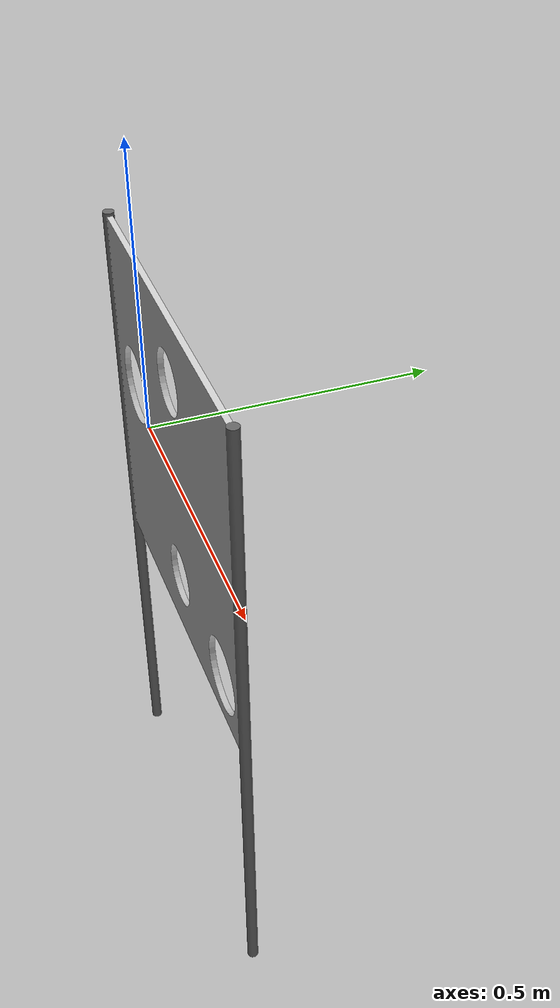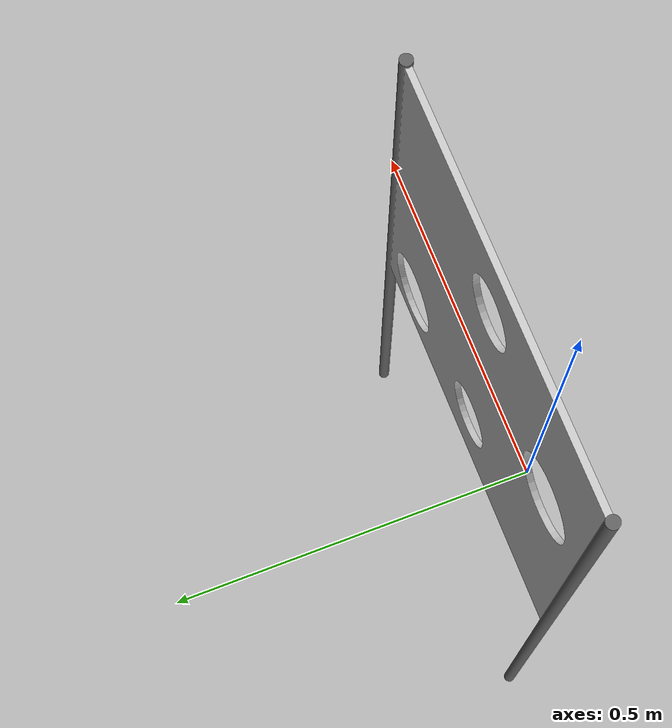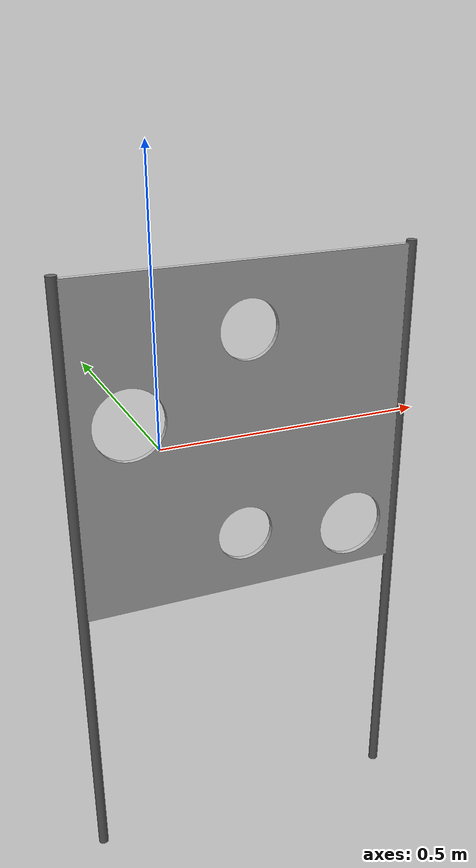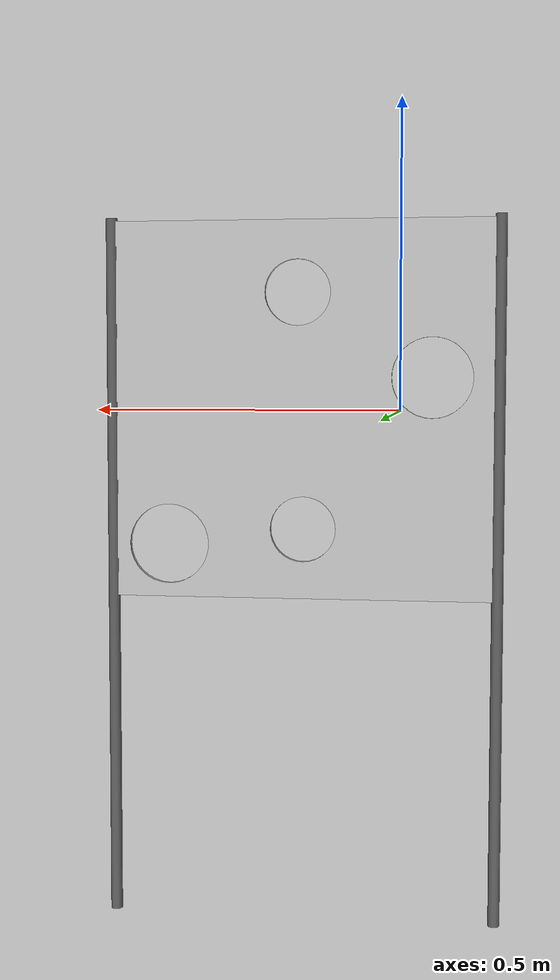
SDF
<?xml version="1.0"?>
<sdf version='1.7'>
  <model name='competition_tagging'>
    <static>true</static>
    <link name='base_link'>
      <pose>0 0 0 0 -0 0</pose>
      <inertial>
        <pose>0 0 0 0 -0 0</pose>
        <mass>1</mass>
        <inertia>
          <ixx>0.166667</ixx>
          <ixy>0</ixy>
          <ixz>0</ixz>
          <iyy>0.166667</iyy>
          <iyz>0</iyz>
          <izz>0.166667</izz>
        </inertia>
      </inertial>
      <collision name='base_link_collision'>
        <pose>0 0 0 0 -0 0</pose>
        <geometry>
          <mesh>
             <uri>model://competition_tagging/meshes/taggingtarget.dae</uri>
          </mesh>
        </geometry>
      </collision>
      <visual name='base_link_visual'>
        <pose>0 0 0 0 -0 0</pose>
        <geometry>
          <mesh>
            <uri>model://competition_tagging/meshes/taggingtarget.dae</uri>
          </mesh>
        </geometry>
      </visual>
    </link>
  </model>
</sdf>
